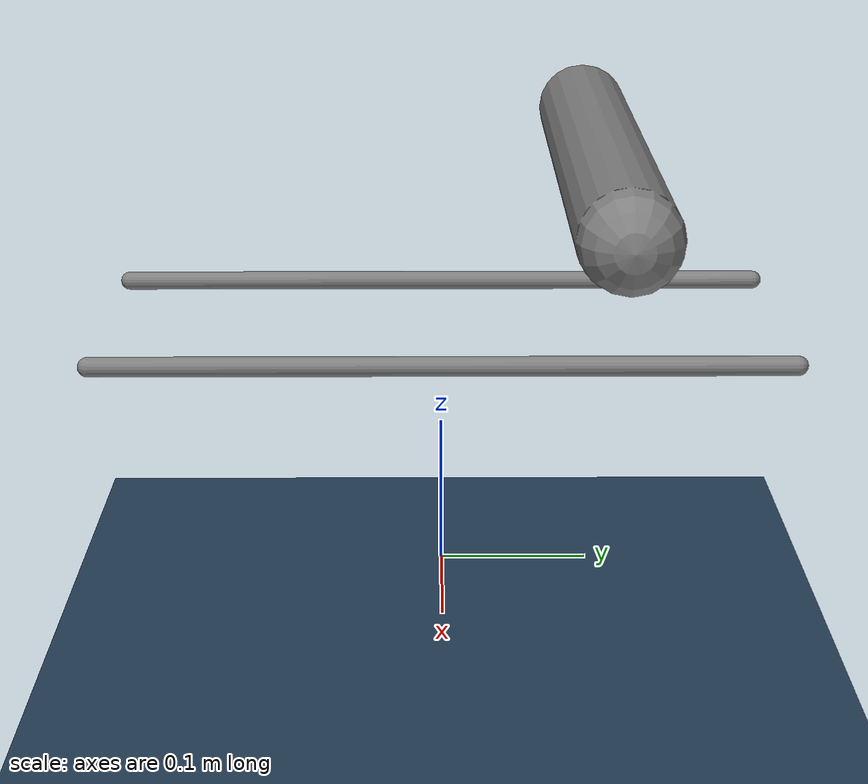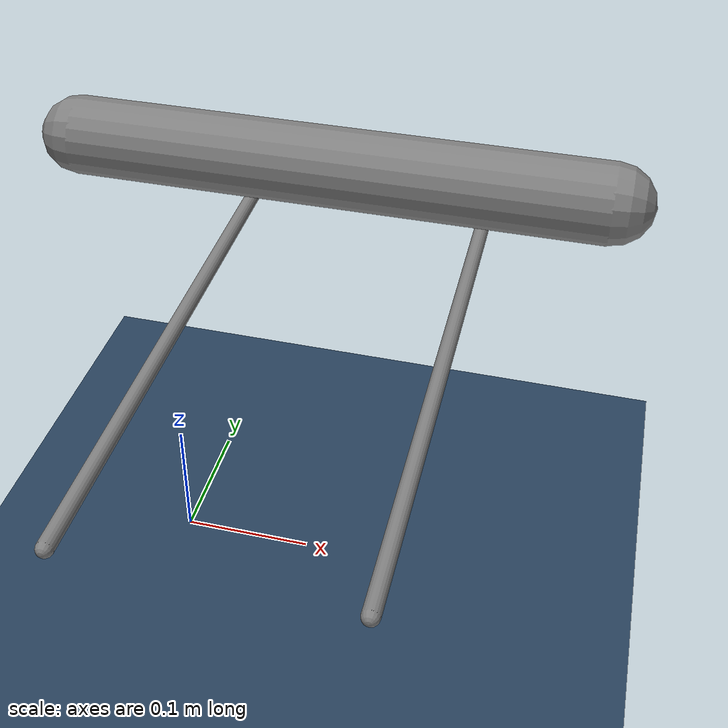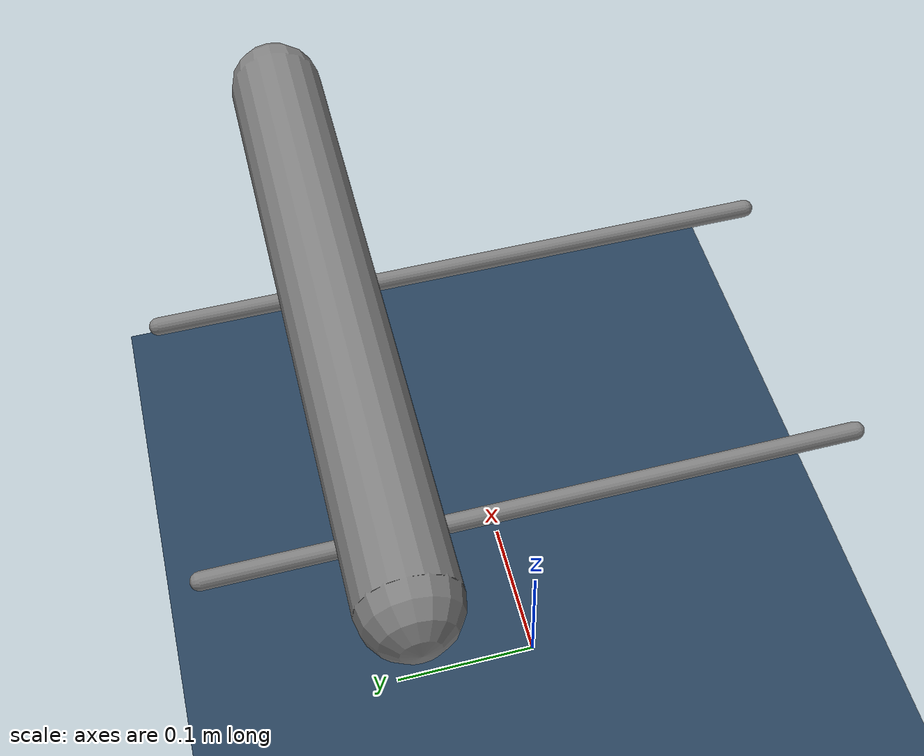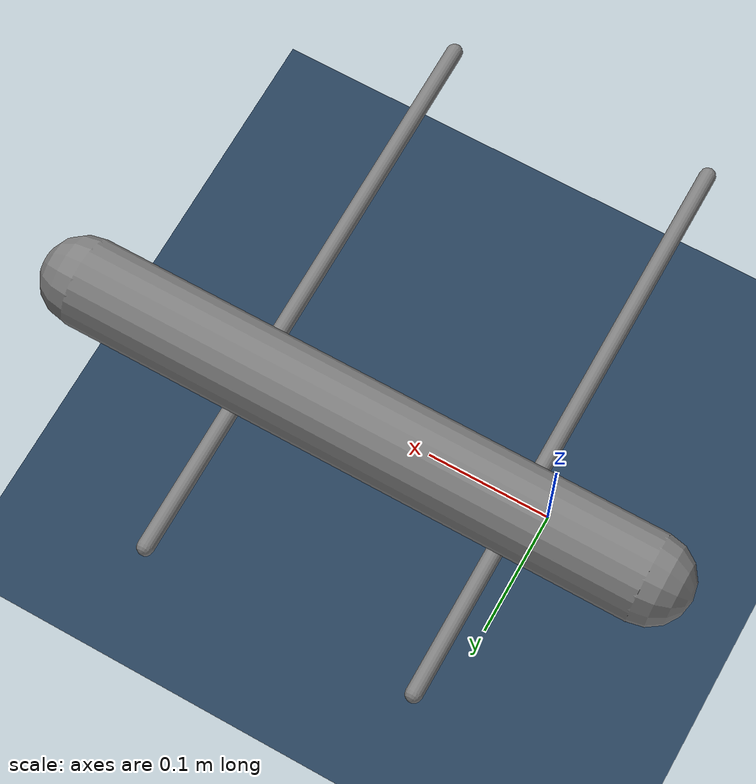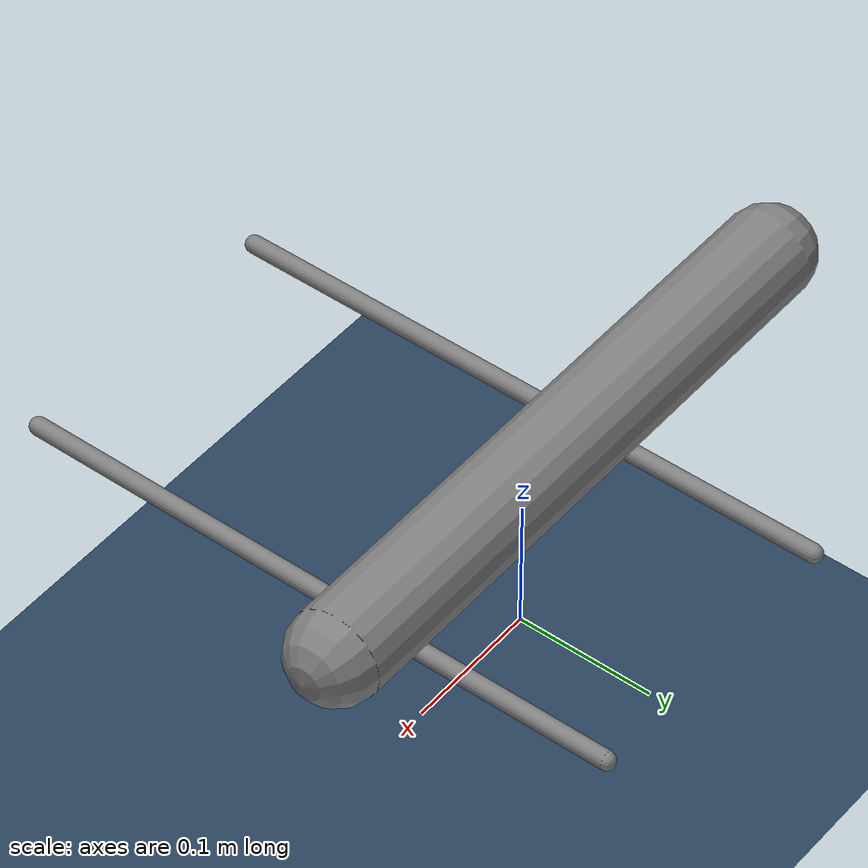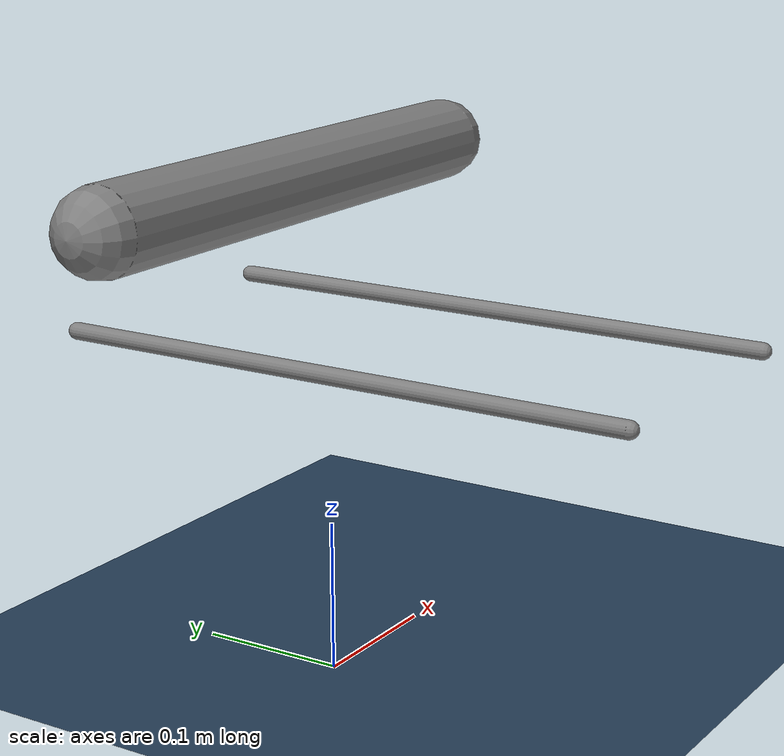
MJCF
<mujoco model="HumanRobotPhysicalContact">

    <!-- 编译器选项 -->
    <compiler meshdir="asset" texturedir="asset" autolimits="true" angle="radian" />

    <!-- 0.002 is better-->
    <option timestep="0.002" iterations="100" ls_iterations="50" solver="Newton">
        <flag eulerdamp="enable" />
    </option>

    <!-- 模型统计信息 meansize: 物体的平均大小，用于自动调整渲染和相机设置 -->
    <statistic meansize=".05" center="0 0 0.3" extent="1" />

    <visual>
        <!-- 全局背景/雾颜色和透明度 -->
        <rgba haze="0.15 0.25 0.35 1" />
        <!-- 相关属性扩展：offwidth,离屏渲染的​​分辨率, elevation:相机的​​仰角, azimuth:相机的​​方位角 -->
        <global offwidth="2560" offheight="1440" elevation="-30" azimuth="120" />
        <!-- 渲染质量设置,阴影贴图的分辨率（4096表示高质量阴影） -->
        <quality shadowsize="4096" />
        <!-- 渲染参数设置 -->
        <map stiffness="700" shadowscale="0.5" fogstart="1" fogend="15" zfar="40" haze="1" force="0.1" />
    </visual>

    <asset>
        <texture type="skybox" builtin="gradient" rgb1="0.52734375 0.8046875 0.91796875" rgb2="0 0 0" width="512" height="3072" />
        <texture name="grid" type="2d" builtin="checker" width="512" height="512" rgb1=".1 .2 .3" rgb2=".2 .3 .4" />
        <material name="grid" texture="grid" texrepeat="1 1" texuniform="true" reflectance=".2" />
    </asset>

    <extension>
        <plugin plugin="mujoco.HumanRobotPhysicalContact" />
    </extension>

    <size memory="10M" />

    <worldbody>
        <plugin plugin="mujoco.HumanRobotPhysicalContact">
            <config key="config" value="model/plugin/simplesoft/config_test_model2.json" />
        </plugin>

        <light directional="true" diffuse="0.4 0.4 0.4" specular="0.1 0.1 0.1" pos="0 0 5.0" dir="0 0 -1" castshadow="false" />
        <light directional="true" diffuse="0.6 0.6 0.6" specular="0.2 0.2 0.2" pos="0 0 4" dir="0 0 -1" />
        <geom name="ground" type="plane" pos="0 0 0" size="100 100 0.001" quat="1 0 0 0" material="grid" condim="3" contype="1" conaffinity="15" />

        <body name="limb1" pos="0 0 0.2" quat="1 0 0 0">
            <geom name="limb1_capsule" type="capsule"  size="0.006 0.21" pos="0 0 0" quat="0.7071 0.7071 0 0"/>
        </body>

        <body name="limb2" pos="0.2 0 0.2" quat="1 0 0 0">
            <geom name="limb2_capsule" type="capsule"  size="0.006 0.21" pos="0 0 0" quat="0.7071 0.7071 0 0"/>
        </body>

        <body name="rob_link1" pos="-0.1 0.1 0.3" quat="0.7071 0 0.7071 0">
            <geom name="rob_link1_capsule" type="capsule" size="0.03 0.2" pos="0 0 0.2"/>
            <freejoint/>
        </body>

    </worldbody>

</mujoco>
